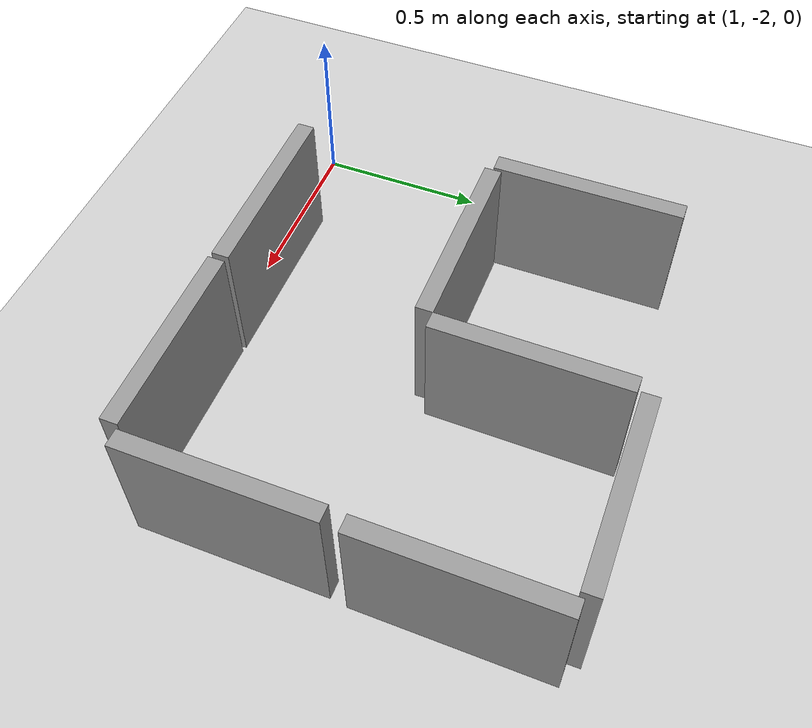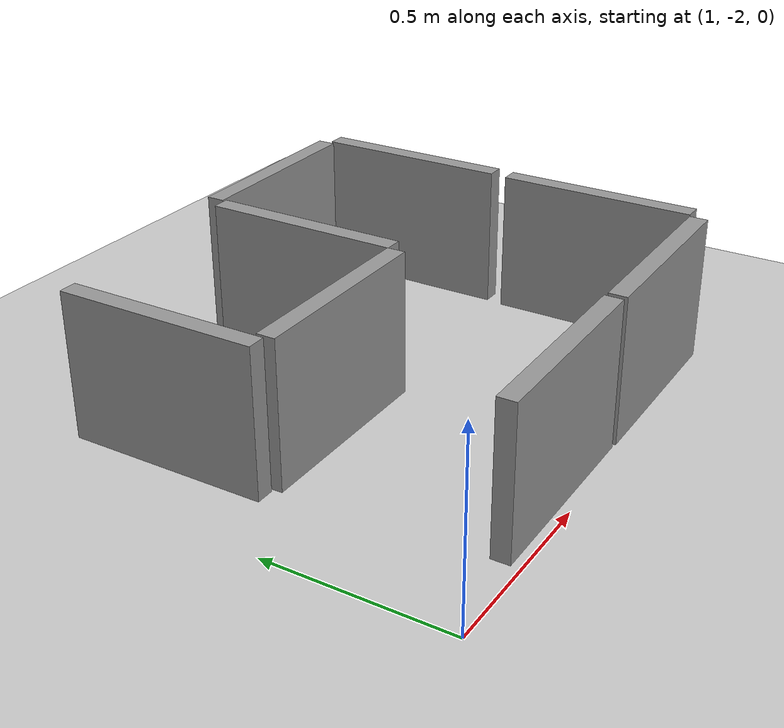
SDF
<sdf version="1.6">
 <world name="default">
  <model name="ground_plane">
   <static>1</static>
   <link name="link">
    <collision name="collision">
     <geometry><plane><normal>0 0 1</normal><size>100 100</size></plane></geometry>
     <surface>
      <contact><collide_bitmask>65535</collide_bitmask></contact>
      <friction><ode><mu>100</mu><mu2>50</mu2></ode></friction>
     </surface>
    </collision>
    <visual name="visual">
     <cast_shadows>0</cast_shadows>
     <geometry><plane><normal>0 0 1</normal><size>100 100</size></plane></geometry>
     <material>
      <script><uri>file://media/materials/scripts/gazebo.material</uri><name>Gazebo/Grey</name></script>
     </material>
    </visual>
   </link>
  </model>
  <model name="Maze_unit_clone_5_clone_1">
   <link name="link">
    <inertial>
     <mass>1</mass>
     <inertia>
      <ixx>0.166667</ixx>
      <ixy>0</ixy>
      <ixz>0</ixz>
      <iyy>0.166667</iyy>
      <iyz>0</iyz>
      <izz>0.166667</izz>
     </inertia>
    </inertial>
    <pose>-0.463146 -0.530916 -0 0 -0 0</pose>
    <visual name="visual">
     <geometry><box><size>0.05 0.55 0.4</size></box></geometry>
     <material>
      <script><name>Gazebo/Grey</name><uri>file://media/materials/scripts/gazebo.material</uri></script>
      <shader type="vertex"><normal_map>__default__</normal_map></shader>
      <ambient>0.933 0.933 0.925 1</ambient>
      <diffuse>0.7 0.7 0.7 1</diffuse>
      <specular>0.01 0.01 0.01 1</specular>
      <emissive>0 0 0 1</emissive>
     </material>
    </visual>
    <collision name="collision">
     <geometry><box><size>0.05 0.55 0.4</size></box></geometry>
     <surface>
      <friction>
       <ode><mu>1</mu><mu2>1</mu2><fdir1>0 0 0</fdir1><slip1>0</slip1><slip2>0</slip2></ode>
       <torsional>
        <coefficient>1</coefficient>
        <patch_radius>0</patch_radius>
        <surface_radius>0</surface_radius>
        <use_patch_radius>1</use_patch_radius>
        <ode><slip>0</slip></ode>
       </torsional>
      </friction>
      <bounce><restitution_coefficient>0</restitution_coefficient><threshold>1e+06</threshold></bounce>
      <contact>
       <collide_without_contact>0</collide_without_contact>
       <collide_without_contact_bitmask>1</collide_without_contact_bitmask>
       <collide_bitmask>1</collide_bitmask>
       <ode>
        <soft_cfm>0</soft_cfm>
        <soft_erp>0.2</soft_erp>
        <kp>1e+13</kp>
        <kd>1</kd>
        <max_vel>0.01</max_vel>
        <min_depth>0</min_depth>
       </ode>
       <bullet>
        <split_impulse>1</split_impulse>
        <split_impulse_penetration_threshold>-0.01</split_impulse_penetration_threshold>
        <soft_cfm>0</soft_cfm>
        <soft_erp>0.2</soft_erp>
        <kp>1e+13</kp>
        <kd>1</kd>
       </bullet>
      </contact>
     </surface>
    </collision>
   </link>
   <static>1</static>
   <pose>0.996717 -1.48825 0.199997 -0 6e-06 1.57653</pose>
  </model>
  <model name="Maze_unit_clone_5_clone_2">
   <link name="link">
    <inertial>
     <mass>1</mass>
     <inertia>
      <ixx>0.166667</ixx>
      <ixy>0</ixy>
      <ixz>0</ixz>
      <iyy>0.166667</iyy>
      <iyz>0</iyz>
      <izz>0.166667</izz>
     </inertia>
    </inertial>
    <pose>-0.463146 -0.530916 0 0 -0 0</pose>
    <visual name="visual">
     <geometry><box><size>0.05 0.55 0.4</size></box></geometry>
     <material>
      <script><name>Gazebo/Grey</name><uri>file://media/materials/scripts/gazebo.material</uri></script>
      <shader type="vertex"><normal_map>__default__</normal_map></shader>
      <ambient>0.933 0.933 0.925 1</ambient>
      <diffuse>0.7 0.7 0.7 1</diffuse>
      <specular>0.01 0.01 0.01 1</specular>
      <emissive>0 0 0 1</emissive>
     </material>
    </visual>
    <collision name="collision">
     <geometry><box><size>0.05 0.55 0.4</size></box></geometry>
     <surface>
      <friction>
       <ode><mu>1</mu><mu2>1</mu2><fdir1>0 0 0</fdir1><slip1>0</slip1><slip2>0</slip2></ode>
       <torsional>
        <coefficient>1</coefficient>
        <patch_radius>0</patch_radius>
        <surface_radius>0</surface_radius>
        <use_patch_radius>1</use_patch_radius>
        <ode><slip>0</slip></ode>
       </torsional>
      </friction>
      <bounce><restitution_coefficient>0</restitution_coefficient><threshold>1e+06</threshold></bounce>
      <contact>
       <collide_without_contact>0</collide_without_contact>
       <collide_without_contact_bitmask>1</collide_without_contact_bitmask>
       <collide_bitmask>1</collide_bitmask>
       <ode>
        <soft_cfm>0</soft_cfm>
        <soft_erp>0.2</soft_erp>
        <kp>1e+13</kp>
        <kd>1</kd>
        <max_vel>0.01</max_vel>
        <min_depth>0</min_depth>
       </ode>
       <bullet>
        <split_impulse>1</split_impulse>
        <split_impulse_penetration_threshold>-0.01</split_impulse_penetration_threshold>
        <soft_cfm>0</soft_cfm>
        <soft_erp>0.2</soft_erp>
        <kp>1e+13</kp>
        <kd>1</kd>
       </bullet>
      </contact>
     </surface>
    </collision>
   </link>
   <static>1</static>
   <pose>1.56188 -1.48819 0.2 0 -0 1.57668</pose>
  </model>
  <model name="Maze_unit_clone_2_clone_0_clone">
   <link name="link">
    <inertial>
     <mass>1</mass>
     <inertia>
      <ixx>0.166667</ixx>
      <ixy>0</ixy>
      <ixz>0</ixz>
      <iyy>0.166667</iyy>
      <iyz>0</iyz>
      <izz>0.166667</izz>
     </inertia>
    </inertial>
    <pose>-0.463146 -0.530916 0 0 -0 0</pose>
    <visual name="visual">
     <geometry><box><size>0.05 0.55 0.4</size></box></geometry>
     <material>
      <script><name>Gazebo/Grey</name><uri>file://media/materials/scripts/gazebo.material</uri></script>
      <shader type="vertex"><normal_map>__default__</normal_map></shader>
      <ambient>0.933 0.933 0.925 1</ambient>
      <diffuse>0.7 0.7 0.7 1</diffuse>
      <specular>0.01 0.01 0.01 1</specular>
      <emissive>0 0 0 1</emissive>
     </material>
    </visual>
    <collision name="collision">
     <geometry><box><size>0.05 0.55 0.4</size></box></geometry>
     <surface>
      <friction>
       <ode><mu>1</mu><mu2>1</mu2><fdir1>0 0 0</fdir1><slip1>0</slip1><slip2>0</slip2></ode>
       <torsional>
        <coefficient>1</coefficient>
        <patch_radius>0</patch_radius>
        <surface_radius>0</surface_radius>
        <use_patch_radius>1</use_patch_radius>
        <ode><slip>0</slip></ode>
       </torsional>
      </friction>
      <bounce><restitution_coefficient>0</restitution_coefficient><threshold>1e+06</threshold></bounce>
      <contact>
       <collide_without_contact>0</collide_without_contact>
       <collide_without_contact_bitmask>1</collide_without_contact_bitmask>
       <collide_bitmask>1</collide_bitmask>
       <ode>
        <soft_cfm>0</soft_cfm>
        <soft_erp>0.2</soft_erp>
        <kp>1e+13</kp>
        <kd>1</kd>
        <max_vel>0.01</max_vel>
        <min_depth>0</min_depth>
       </ode>
       <bullet>
        <split_impulse>1</split_impulse>
        <split_impulse_penetration_threshold>-0.01</split_impulse_penetration_threshold>
        <soft_cfm>0</soft_cfm>
        <soft_erp>0.2</soft_erp>
        <kp>1e+13</kp>
        <kd>1</kd>
       </bullet>
      </contact>
     </surface>
    </collision>
   </link>
   <static>1</static>
   <pose>2.86888 -1.11237 0.2 0 -0 0.0006</pose>
  </model>
  <model name="Maze_unit_clone_2_clone_0_clone_0">
   <link name="link">
    <inertial>
     <mass>1</mass>
     <inertia>
      <ixx>0.166667</ixx>
      <ixy>0</ixy>
      <ixz>0</ixz>
      <iyy>0.166667</iyy>
      <iyz>0</iyz>
      <izz>0.166667</izz>
     </inertia>
    </inertial>
    <pose>-0.463146 -0.530916 -0 0 -0 0</pose>
    <visual name="visual">
     <geometry><box><size>0.05 0.55 0.4</size></box></geometry>
     <material>
      <script><name>Gazebo/Grey</name><uri>file://media/materials/scripts/gazebo.material</uri></script>
      <shader type="vertex"><normal_map>__default__</normal_map></shader>
      <ambient>0.933 0.933 0.925 1</ambient>
      <diffuse>0.7 0.7 0.7 1</diffuse>
      <specular>0.01 0.01 0.01 1</specular>
      <emissive>0 0 0 1</emissive>
     </material>
    </visual>
    <collision name="collision">
     <geometry><box><size>0.05 0.55 0.4</size></box></geometry>
     <surface>
      <friction>
       <ode><mu>1</mu><mu2>1</mu2><fdir1>0 0 0</fdir1><slip1>0</slip1><slip2>0</slip2></ode>
       <torsional>
        <coefficient>1</coefficient>
        <patch_radius>0</patch_radius>
        <surface_radius>0</surface_radius>
        <use_patch_radius>1</use_patch_radius>
        <ode><slip>0</slip></ode>
       </torsional>
      </friction>
      <bounce><restitution_coefficient>0</restitution_coefficient><threshold>1e+06</threshold></bounce>
      <contact>
       <collide_without_contact>0</collide_without_contact>
       <collide_without_contact_bitmask>1</collide_without_contact_bitmask>
       <collide_bitmask>1</collide_bitmask>
       <ode>
        <soft_cfm>0</soft_cfm>
        <soft_erp>0.2</soft_erp>
        <kp>1e+13</kp>
        <kd>1</kd>
        <max_vel>0.01</max_vel>
        <min_depth>0</min_depth>
       </ode>
       <bullet>
        <split_impulse>1</split_impulse>
        <split_impulse_penetration_threshold>-0.01</split_impulse_penetration_threshold>
        <soft_cfm>0</soft_cfm>
        <soft_erp>0.2</soft_erp>
        <kp>1e+13</kp>
        <kd>1</kd>
       </bullet>
      </contact>
     </surface>
    </collision>
   </link>
   <static>1</static>
   <pose>2.87493 -0.515366 0.200001 1e-06 -1e-06 8.4e-05</pose>
  </model>
  <model name="Maze_unit_clone_5_clone_13">
   <link name="link">
    <inertial>
     <mass>1</mass>
     <inertia>
      <ixx>0.166667</ixx>
      <ixy>0</ixy>
      <ixz>0</ixz>
      <iyy>0.166667</iyy>
      <iyz>0</iyz>
      <izz>0.166667</izz>
     </inertia>
    </inertial>
    <pose>-0.463146 -0.530916 -0 0 -0 0</pose>
    <visual name="visual">
     <geometry><box><size>0.05 0.55 0.4</size></box></geometry>
     <material>
      <script><name>Gazebo/Grey</name><uri>file://media/materials/scripts/gazebo.material</uri></script>
      <shader type="vertex"><normal_map>__default__</normal_map></shader>
      <ambient>0.933 0.933 0.925 1</ambient>
      <diffuse>0.7 0.7 0.7 1</diffuse>
      <specular>0.01 0.01 0.01 1</specular>
      <emissive>0 0 0 1</emissive>
     </material>
    </visual>
    <collision name="collision">
     <geometry><box><size>0.05 0.55 0.4</size></box></geometry>
     <surface>
      <friction>
       <ode><mu>1</mu><mu2>1</mu2><fdir1>0 0 0</fdir1><slip1>0</slip1><slip2>0</slip2></ode>
       <torsional>
        <coefficient>1</coefficient>
        <patch_radius>0</patch_radius>
        <surface_radius>0</surface_radius>
        <use_patch_radius>1</use_patch_radius>
        <ode><slip>0</slip></ode>
       </torsional>
      </friction>
      <bounce><restitution_coefficient>0</restitution_coefficient><threshold>1e+06</threshold></bounce>
      <contact>
       <collide_without_contact>0</collide_without_contact>
       <collide_without_contact_bitmask>1</collide_without_contact_bitmask>
       <collide_bitmask>1</collide_bitmask>
       <ode>
        <soft_cfm>0</soft_cfm>
        <soft_erp>0.2</soft_erp>
        <kp>1e+13</kp>
        <kd>1</kd>
        <max_vel>0.01</max_vel>
        <min_depth>0</min_depth>
       </ode>
       <bullet>
        <split_impulse>1</split_impulse>
        <split_impulse_penetration_threshold>-0.01</split_impulse_penetration_threshold>
        <soft_cfm>0</soft_cfm>
        <soft_erp>0.2</soft_erp>
        <kp>1e+13</kp>
        <kd>1</kd>
       </bullet>
      </contact>
     </surface>
    </collision>
   </link>
   <static>1</static>
   <pose>1.56428 -0.304948 0.200004 0 -9e-06 1.58022</pose>
  </model>
  <model name="Maze_unit_clone_2_clone_1">
   <link name="link">
    <inertial>
     <mass>1</mass>
     <inertia>
      <ixx>0.166667</ixx>
      <ixy>0</ixy>
      <ixz>0</ixz>
      <iyy>0.166667</iyy>
      <iyz>0</iyz>
      <izz>0.166667</izz>
     </inertia>
    </inertial>
    <pose>-0.463146 -0.530916 0 0 -0 0</pose>
    <visual name="visual">
     <geometry><box><size>0.05 0.55 0.4</size></box></geometry>
     <material>
      <script><name>Gazebo/Grey</name><uri>file://media/materials/scripts/gazebo.material</uri></script>
      <shader type="vertex"><normal_map>__default__</normal_map></shader>
      <ambient>0.933 0.933 0.925 1</ambient>
      <diffuse>0.7 0.7 0.7 1</diffuse>
      <specular>0.01 0.01 0.01 1</specular>
      <emissive>0 0 0 1</emissive>
     </material>
    </visual>
    <collision name="collision">
     <geometry><box><size>0.05 0.55 0.4</size></box></geometry>
     <surface>
      <friction>
       <ode><mu>1</mu><mu2>1</mu2><fdir1>0 0 0</fdir1><slip1>0</slip1><slip2>0</slip2></ode>
       <torsional>
        <coefficient>1</coefficient>
        <patch_radius>0</patch_radius>
        <surface_radius>0</surface_radius>
        <use_patch_radius>1</use_patch_radius>
        <ode><slip>0</slip></ode>
       </torsional>
      </friction>
      <bounce><restitution_coefficient>0</restitution_coefficient><threshold>1e+06</threshold></bounce>
      <contact>
       <collide_without_contact>0</collide_without_contact>
       <collide_without_contact_bitmask>1</collide_without_contact_bitmask>
       <collide_bitmask>1</collide_bitmask>
       <ode>
        <soft_cfm>0</soft_cfm>
        <soft_erp>0.2</soft_erp>
        <kp>1e+13</kp>
        <kd>1</kd>
        <max_vel>0.01</max_vel>
        <min_depth>0</min_depth>
       </ode>
       <bullet>
        <split_impulse>1</split_impulse>
        <split_impulse_penetration_threshold>-0.01</split_impulse_penetration_threshold>
        <soft_cfm>0</soft_cfm>
        <soft_erp>0.2</soft_erp>
        <kp>1e+13</kp>
        <kd>1</kd>
       </bullet>
      </contact>
     </surface>
    </collision>
   </link>
   <static>1</static>
   <pose>2.27082 -0.544715 0.2 0 0 -0.004099</pose>
  </model>
  <model name="Maze_unit_clone_5_clone_12">
   <link name="link">
    <inertial>
     <mass>1</mass>
     <inertia>
      <ixx>0.166667</ixx>
      <ixy>0</ixy>
      <ixz>0</ixz>
      <iyy>0.166667</iyy>
      <iyz>0</iyz>
      <izz>0.166667</izz>
     </inertia>
    </inertial>
    <pose>-0.463146 -0.530916 -0 0 -0 0</pose>
    <visual name="visual">
     <geometry><box><size>0.05 0.55 0.4</size></box></geometry>
     <material>
      <script><name>Gazebo/Grey</name><uri>file://media/materials/scripts/gazebo.material</uri></script>
      <shader type="vertex"><normal_map>__default__</normal_map></shader>
      <ambient>0.933 0.933 0.925 1</ambient>
      <diffuse>0.7 0.7 0.7 1</diffuse>
      <specular>0.01 0.01 0.01 1</specular>
      <emissive>0 0 0 1</emissive>
     </material>
    </visual>
    <collision name="collision">
     <geometry><box><size>0.05 0.55 0.4</size></box></geometry>
     <surface>
      <friction>
       <ode><mu>1</mu><mu2>1</mu2><fdir1>0 0 0</fdir1><slip1>0</slip1><slip2>0</slip2></ode>
       <torsional>
        <coefficient>1</coefficient>
        <patch_radius>0</patch_radius>
        <surface_radius>0</surface_radius>
        <use_patch_radius>1</use_patch_radius>
        <ode><slip>0</slip></ode>
       </torsional>
      </friction>
      <bounce><restitution_coefficient>0</restitution_coefficient><threshold>1e+06</threshold></bounce>
      <contact>
       <collide_without_contact>0</collide_without_contact>
       <collide_without_contact_bitmask>1</collide_without_contact_bitmask>
       <collide_bitmask>1</collide_bitmask>
       <ode>
        <soft_cfm>0</soft_cfm>
        <soft_erp>0.2</soft_erp>
        <kp>1e+13</kp>
        <kd>1</kd>
        <max_vel>0.01</max_vel>
        <min_depth>0</min_depth>
       </ode>
       <bullet>
        <split_impulse>1</split_impulse>
        <split_impulse_penetration_threshold>-0.01</split_impulse_penetration_threshold>
        <soft_cfm>0</soft_cfm>
        <soft_erp>0.2</soft_erp>
        <kp>1e+13</kp>
        <kd>1</kd>
       </bullet>
      </contact>
     </surface>
    </collision>
   </link>
   <static>1</static>
   <pose>0.973288 -0.910175 0.199998 0 4e-06 1.57246</pose>
  </model>
  <model name="Maze_unit_clone_2_clone_0">
   <link name="link">
    <inertial>
     <mass>1</mass>
     <inertia>
      <ixx>0.166667</ixx>
      <ixy>0</ixy>
      <ixz>0</ixz>
      <iyy>0.166667</iyy>
      <iyz>0</iyz>
      <izz>0.166667</izz>
     </inertia>
    </inertial>
    <pose>-0.463146 -0.530916 0 0 -0 0</pose>
    <visual name="visual">
     <geometry><box><size>0.05 0.55 0.4</size></box></geometry>
     <material>
      <script><name>Gazebo/Grey</name><uri>file://media/materials/scripts/gazebo.material</uri></script>
      <shader type="vertex"><normal_map>__default__</normal_map></shader>
      <ambient>0.933 0.933 0.925 1</ambient>
      <diffuse>0.7 0.7 0.7 1</diffuse>
      <specular>0.01 0.01 0.01 1</specular>
      <emissive>0 0 0 1</emissive>
     </material>
    </visual>
    <collision name="collision">
     <geometry><box><size>0.05 0.55 0.4</size></box></geometry>
     <surface>
      <friction>
       <ode><mu>1</mu><mu2>1</mu2><fdir1>0 0 0</fdir1><slip1>0</slip1><slip2>0</slip2></ode>
       <torsional>
        <coefficient>1</coefficient>
        <patch_radius>0</patch_radius>
        <surface_radius>0</surface_radius>
        <use_patch_radius>1</use_patch_radius>
        <ode><slip>0</slip></ode>
       </torsional>
      </friction>
      <bounce><restitution_coefficient>0</restitution_coefficient><threshold>1e+06</threshold></bounce>
      <contact>
       <collide_without_contact>0</collide_without_contact>
       <collide_without_contact_bitmask>1</collide_without_contact_bitmask>
       <collide_bitmask>1</collide_bitmask>
       <ode>
        <soft_cfm>0</soft_cfm>
        <soft_erp>0.2</soft_erp>
        <kp>1e+13</kp>
        <kd>1</kd>
        <max_vel>0.01</max_vel>
        <min_depth>0</min_depth>
       </ode>
       <bullet>
        <split_impulse>1</split_impulse>
        <split_impulse_penetration_threshold>-0.01</split_impulse_penetration_threshold>
        <soft_cfm>0</soft_cfm>
        <soft_erp>0.2</soft_erp>
        <kp>1e+13</kp>
        <kd>1</kd>
       </bullet>
      </contact>
     </surface>
    </collision>
   </link>
   <static>1</static>
   <pose>1.65598 -0.566423 0.2 0 -0 0.004235</pose>
  </model>
 </world>
</sdf>
